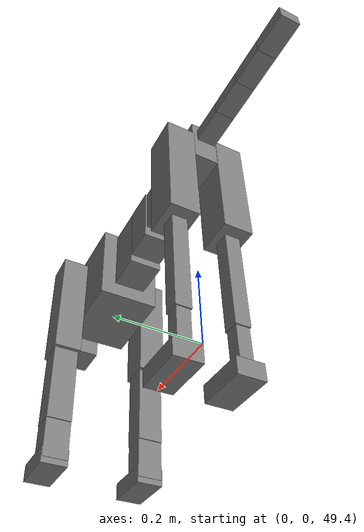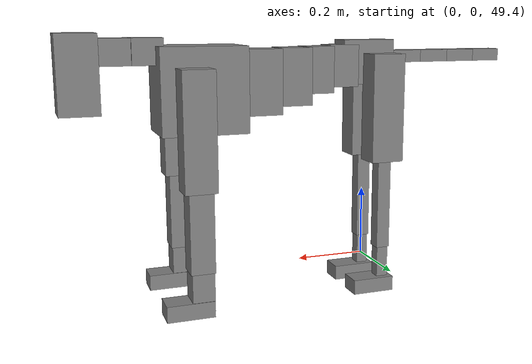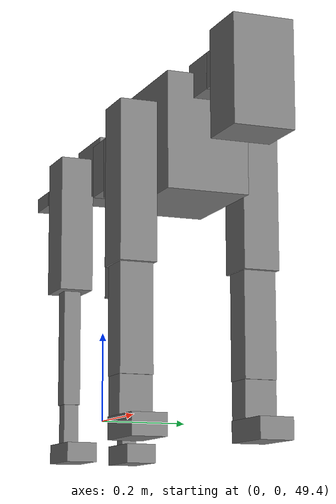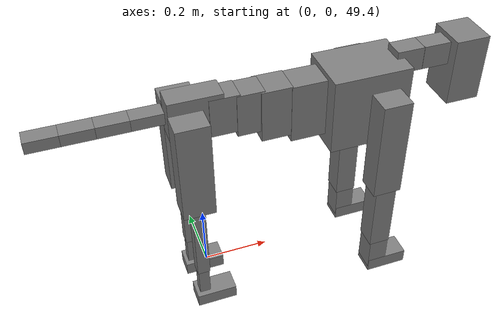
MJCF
<mujoco model="dog">

    <default>
        <joint armature="0.02" stiffness="1" damping="0.2" limited="true"/>
        <geom condim="3" friction="1 0.05 0.05" margin="0.01"/>
        <motor ctrllimited="true" ctrlrange="-1.0 1.0" forcelimited="true" gear="50"/>
    </default>

    <compiler inertiafromgeom="true" angle="radian"/>

    <option timestep="0.016" iterations="50" tolerance="1e-10" solver="Newton" jacobian="dense" cone="pyramidal"/>

    <size nconmax="20000" njmax="60000" nstack="5000000"/>
    <visual>
        <map force="0.1" zfar="30"/>
        <rgba haze="0.15 0.25 0.35 1"/>
        <quality shadowsize="2048"/>
        <global offwidth="800" offheight="800"/>
    </visual>

    <asset>
        <texture type="skybox" builtin="gradient" rgb1="0.3 0.5 0.7" rgb2="0 0 0" width="512" height="512"/>
        <texture name="texplane" type="2d" builtin="checker" rgb1=".2 .3 .4" rgb2=".1 0.15 0.2" width="512" height="512"
                 mark="cross" markrgb=".8 .8 .8"/>
        <texture name="texgeom" type="cube" builtin="flat" mark="cross" width="127" height="1278" rgb1="0.8 0.6 0.4"
                 rgb2="0.8 0.6 0.4" markrgb="1 1 1" random="0.01"/>

        <material name="matplane" reflectance="0.3" texture="texplane" texrepeat="1 1" texuniform="true"/>
        <material name="matgeom" texture="texgeom" texuniform="true" rgba="0.8 0.6 .4 1"/>
    </asset>

    <worldbody>
        <geom name="floor" pos="0 0 0" size="0 0 .25" type="plane" material="matplane" condim="3"/>

        <light directional="false" diffuse=".2 .2 .2" specular="0 0 0" pos="0 0 5" dir="0 0 -1" castshadow="false"/>
        <light mode="targetbodycom" target="torso" directional="false" diffuse=".8 .8 .8" specular="0.3 0.3 0.3"
               pos="0 0 4.0" dir="0 0 -1"/>

        <body name="root" pos="0 0 50">
            <freejoint name="root_1"/>
            <geom type="box" pos="0 0 -0.02" size="0.0774  0.0358  0.063" density="2030"/>

            <body name="spine1" pos="0.054 0 0">
                <joint name="spine1_y" axis="0 1 0" range="0 0.7" limited="true"/>
                <geom type="box" pos="0.02375 0 -0.03" size="0.04375  0.0375  0.05985" density="2030"/>

                <body name="spine2" pos="0.0612 0 0">
                    <joint name="spine2_y" axis="0 1 0" range="-0.15 0.15" limited="true"/>
                    <geom type="box" pos="0.03555  0  -0.04" size="0.04055  0.039  0.06615" density="2030"/>

                    <body name="spine3" pos="0.0730 0 0">
                        <joint name="spine3_y" axis="0 1 0" range="-0.15 0.15" limited="true"/>
                        <geom type="box" pos="0.03555  0  -0.057" size="0.04555  0.0445  0.081" density="2030"/>

                        <body name="spine4" pos="0.0780 0 0">
                            <joint name="spine4_y" axis="0 1 0" range="-0.15 0.15" limited="true"/>
                            <geom type="box" pos="0.05265  0  -0.07" size="0.05265  0.045  0.09135" density="2030"/>

                            <body name="torso" pos="0.1082 0 0">
                                <joint name="torso_y" axis="0 1 0" range="-0.15 0.15" limited="true"/>
                                <geom type="box" pos="0.11925  0  -0.085" size="0.11925  0.085  0.11745"
                                      density="2030"/>

                                <body name="neck1" pos="0.2160  0   0.0180">
                                    <joint name="neck1_y" axis="0 1 0" range="-1.2  -1" limited="true"/>
                                    <geom type="box" pos="0.0423  0  0" size="0.0423  0.03  0.036" density="2325"/>

                                    <body name="neck2" pos="0.0853  0  0">
                                        <joint name="neck2_y" axis="0 1 0" range="0.1  0" limited="true"/>
                                        <geom type="box" pos="0.0423  0  0" size="0.0423  0.03  0.036" density="2325"/>

                                        <body name="head" pos="0.0853  0  0">
                                            <joint name="head_y" axis="0 1 0" range="-0.3  -0.2" limited="true"/>
                                            <geom type="box" pos="0.0531  0  -0.055" size="0.0531  0.06  0.1044"
                                                  density="4030"/>

                                        </body>
                                    </body>
                                </body>

                                <body name="front_shoulder" pos="0.156  0   -0.0480">
                                    <joint name="front_shoulder_y" axis="0 1 0" range="-1 1.5" limited="true"/>
                                    <geom type="box" pos="0 0.13 -0.1334" size="0.0441  0.0377  0.1600" density="1158"/>
                                    <geom type="box" pos="0 -0.13 -0.1334" size="0.0441  0.0377  0.1600"
                                          density="1158"/>

                                    <body name="front_elbow" pos="0  0  -0.2667">
                                        <joint name="front_elbow_y" axis="0 1 0" range="-2 0" limited="true"/>
                                        <geom type="box" pos="0 0.13 -0.1215" size="0.0332  0.0339  0.1215"
                                              density="1081"/>
                                        <geom type="box" pos="0 -0.13 -0.1215" size="0.0332  0.0339  0.1215"
                                              density="1081"/>

                                        <body name="front_wrist" pos="0  0  -0.2430">
                                            <joint name="front_wrist_y" axis="0 1 0" range="-0.2 0" limited="true"/>
                                            <geom type="box" pos="0 0.13 -0.0461" size="0.0304  0.0337  0.0593"
                                                  density="1664"/>
                                            <geom type="box" pos="0 -0.13 -0.0461" size="0.0304  0.0337  0.0593"
                                                  density="1664"/>

                                            <body name="front_finger_end" pos="0  0  -0.0922">
                                                <joint name="front_finger_y" axis="0 1 0" range="-0.4 1"
                                                       limited="true"/>
                                                <geom type="box" pos="0.0355  0.13  -0.0073"
                                                      size="0.0651  0.0355  0.0223" density="1515"/>
                                                <geom type="box" pos="0.0355  -0.13  -0.0073"
                                                      size="0.0651  0.0355  0.0223" density="1515"/>

                                            </body>

                                        </body>
                                    </body>
                                </body>

                            </body>
                        </body>
                    </body>
                </body>
            </body>

            <body name="back_hip" pos="-0.03 0 -0.018">
                <joint name="back_hip_y" axis="0 1 0" range="-1.5 0.3" limited="true"/>
                <geom type="box" pos="0 0.07 -0.1314" size="0.0481  0.0377  0.1542" density="1154"/>
                <geom type="box" pos="0 -0.07 -0.1314" size="0.0481  0.0377  0.1542" density="1154"/>

                <body name="back_knee" pos="0  0  -0.2627">
                    <joint name="back_knee_y" axis="0 1 0" range="0 2.8" limited="true"/>
                    <geom type="box" pos="0 0.07 -0.1334" size="0.0196  0.0194  0.1489" density="1227"/>
                    <geom type="box" pos="0 -0.07 -0.1334" size="0.0196  0.0194  0.1489" density="1227"/>

                    <body name="back_ankle" pos="0  0  -0.2667">
                        <joint name="back_ankle_y" axis="0 1 0" range="-2.2 0" limited="true"/>
                        <geom type="box" pos="0 0.07 -0.0600" size="0.0168  0.0168  0.0712" density="1284"/>
                        <geom type="box" pos="0 -0.07 -0.0600" size="0.0168  0.0168  0.0712" density="1284"/>

                        <body name="back_toe_end" pos="0  0  -0.1200">
                            <joint name="back_toe_y" axis="0 1 0" range="-0.4 1" limited="true"/>
                            <geom type="box" pos="0.0338  0.07  -0.0063" size="0.0620  0.0338  0.0213" density="1515"/>
                            <geom type="box" pos="0.0338  -0.07  -0.0063" size="0.0620  0.0338  0.0213" density="1515"/>

                        </body>
                    </body>
                </body>
            </body>

            <body name="tail1" pos="-0.074 0 -0.006">
                <joint name="tail1_y" axis="0 1 0" range="-0.2 0.2" limited="true"/>
                <geom type="box" pos="-0.0536  0  0" size="0.045  0.025  0.0175" density="1587"/>

                <body name="tail2" pos="-0.09 0 0">
                    <joint name="tail2_y" axis="0 1 0" range="-0.2 0.2" limited="true"/>
                    <geom type="box" pos="-0.0536  0  0" size="0.045  0.025  0.0175" density="1587"/>

                    <body name="tail3" pos="-0.09 0 0">
                        <joint name="tail3_y" axis="0 1 0" range="-0.2 0.2" limited="true"/>
                        <geom type="box" pos="-0.0536  0  0" size="0.045  0.025  0.0175" density="1587"/>

                        <body name="tail4" pos="-0.09 0 0">
                            <joint name="tail4_y" axis="0 1 0" range="-0.2 0.2" limited="true"/>
                            <geom type="box" pos="-0.0536  0  0" size="0.045  0.025  0.0175" density="1587"/>

                        </body>
                    </body>
                </body>
            </body>
        </body>
    </worldbody>

    <actuator>
        <motor joint="spine1_y" forcerange="-150 150     "/>
        <motor joint="spine2_y" forcerange="-150 150     "/>
        <motor joint="spine3_y" forcerange="-150 150     "/>
        <motor joint="spine4_y" forcerange="-150 150     "/>
        <motor joint="torso_y" forcerange="-150 150     "/>
        <motor joint="neck1_y" forcerange="-100 100       "/>
        <motor joint="neck2_y" forcerange="-100 100       "/>
        <motor joint="head_y" forcerange="-150 150       "/>
        <motor joint="front_shoulder_y" forcerange="-167.59 183.82"/>
        <motor joint="front_elbow_y" forcerange="-159.67 186.89"/>
        <motor joint="front_wrist_y" forcerange="-137.50 132.47"/>
        <motor joint="front_finger_y" forcerange="-55.65 93.78"/>
        <motor joint="back_hip_y" forcerange="-382.53 320.24"/>
        <motor joint="back_knee_y" forcerange="-231.54 250.03"/>
        <motor joint="back_angle_y" forcerange="-68.22 100.34"/>
        <motor joint="back_toe_y" forcerange="-90.52 100.21"/>
        <motor joint="tail1_y" forcerange="-50 50     "/>
        <motor joint="tail2_y" forcerange="-50 50     "/>
        <motor joint="tail3_y" forcerange="-50 50     "/>
        <motor joint="tail4_y" forcerange="-50 50     "/>
    </actuator>
</mujoco>
